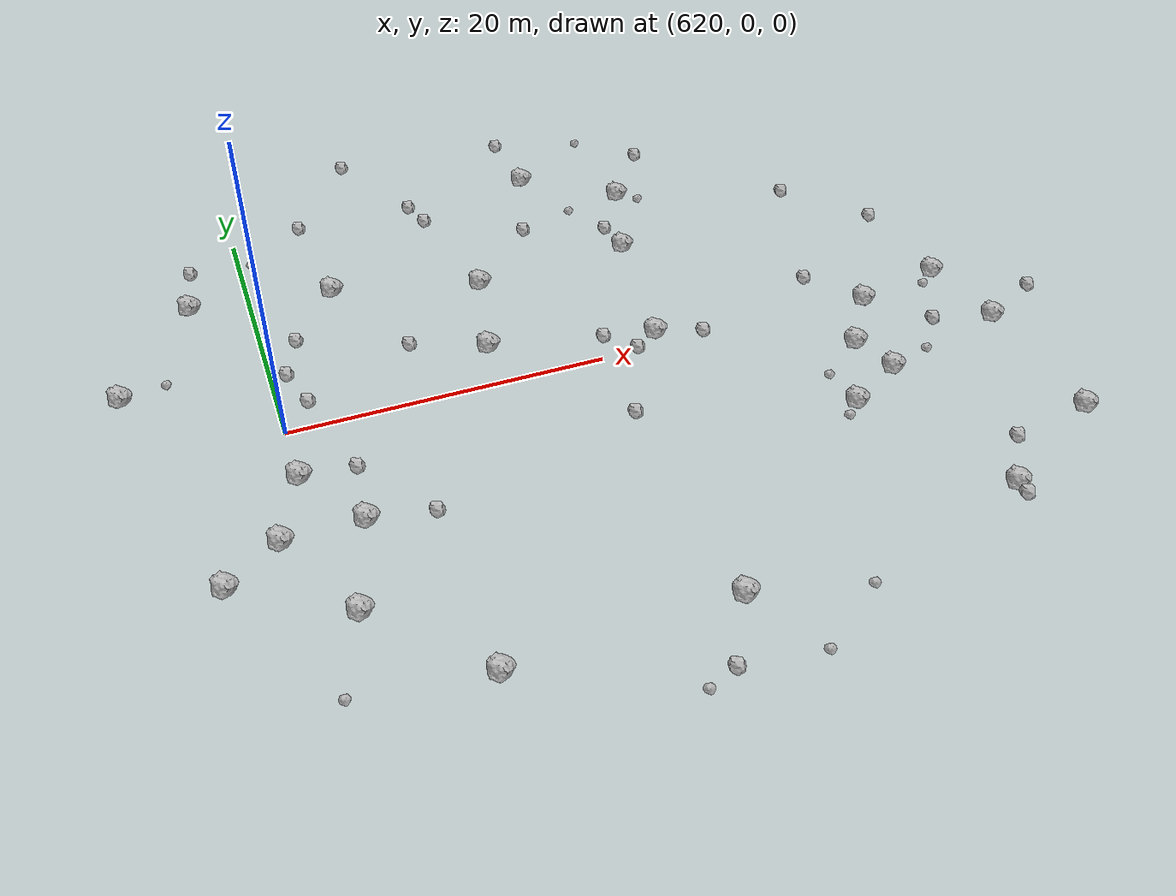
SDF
<sdf version="1.6">
 <world name="default">
  <include><uri>model://sun</uri></include>
  <model name="rock1_16_3">
   <include><uri>model://rock1</uri><pose>655.7043956893044 -4.120770054104209 0.5 0 0 0</pose></include>
  </model>
  <model name="rock1_16_4">
   <include><uri>model://rock1</uri><pose>644.0957441533825 1.175388761452286 0.5 0 0 0</pose></include>
  </model>
  <model name="rock1_16_5">
   <include><uri>model://rock1</uri><pose>665.9452701889929 -14.246281436693234 0.5 0 0 0</pose></include>
  </model>
  <model name="rock1_16_6">
   <include><uri>model://rock1</uri><pose>622.9789239991883 -8.70134914861702 0.5 0 0 0</pose></include>
  </model>
  <model name="rock1_16_7">
   <include><uri>model://rock1</uri><pose>633.5999005435331 3.464019847637047 0.5 0 0 0</pose></include>
  </model>
  <model name="rock1_16_8">
   <include><uri>model://rock1</uri><pose>621.2108016369624 -15.032592927207329 0.5 0 0 0</pose></include>
  </model>
  <model name="rock1_16_9">
   <include><uri>model://rock1</uri><pose>645.4134387568978 10.747280288065554 0.5 0 0 0</pose></include>
  </model>
  <model name="rock1_16_10">
   <include><uri>model://rock1</uri><pose>658.2930943923695 -0.3123761139691936 0.5 0 0 0</pose></include>
  </model>
  <model name="rock1_16_11">
   <include><uri>model://rock1</uri><pose>653.1465837153243 -9.214892761632257 0.5 0 0 0</pose></include>
  </model>
  <model name="rock1_16_12">
   <include><uri>model://rock1</uri><pose>618.1909195657686 -8.790787690261201 0.5 0 0 0</pose></include>
  </model>
  <model name="rock1_16_13">
   <include><uri>model://rock1</uri><pose>656.7765847409971 -7.099984939624303 0.5 0 0 0</pose></include>
  </model>
  <model name="rock1_16_14">
   <include><uri>model://rock1</uri><pose>665.3530263135234 -4.6975369934797975 0.5 0 0 0</pose></include>
  </model>
  <model name="rock1_16_15">
   <include><uri>model://rock1</uri><pose>611.1128313104774 6.096148786975867 0.5 0 0 0</pose></include>
  </model>
  <model name="rock1_16_16">
   <include><uri>model://rock1</uri><pose>614.8278249505858 -11.136126855862905 0.5 0 0 0</pose></include>
  </model>
  <model name="rock1_16_17">
   <include><uri>model://rock1</uri><pose>616.2697249253443 13.764997892469296 0.5 0 0 0</pose></include>
  </model>
  <model name="rock1_16_18">
   <include><uri>model://rock1</uri><pose>658.4979694083089 -18.523543393245667 0.5 0 0 0</pose></include>
  </model>
  <model name="rock1_16_19">
   <include><uri>model://rock1</uri><pose>626.9496047362161 -21.225142504240594 0.5 0 0 0</pose></include>
  </model>
  <model name="rock1_16_20">
   <include><uri>model://rock1</uri><pose>647.2672819390289 16.89147487906392 0.5 0 0 0</pose></include>
  </model>
  <model name="rock1_16_21">
   <include><uri>model://rock1</uri><pose>625.4412993321089 12.56161522874389 0.5 0 0 0</pose></include>
  </model>
  <model name="rock1_16_22">
   <include><uri>model://rock1</uri><pose>640.5017783429344 -20.769339314209653 0.5 0 0 0</pose></include>
  </model>
  <model name="rock1_16_23">
   <include><uri>model://rock1</uri><pose>634.9444601720307 10.005313985209014 0.5 0 0 0</pose></include>
  </model>
  <model name="rock1_16_24">
   <include><uri>model://rock1</uri><pose>641.297520013391 21.022966598976353 0.5 0 0 0</pose></include>
  </model>
  <model name="rock1_16_25">
   <include><uri>model://rock1</uri><pose>620.0858708789065 -4.117884210040511 0.5 0 0 0</pose></include>
  </model>
  <model name="rock1_16_26">
   <include><uri>model://rock1</uri><pose>664.0763939885304 0.903188113872627 0.5 0 0 0</pose></include>
  </model>
  <model name="rock2_16_0">
   <include><uri>model://rock2</uri><pose>632.5770546269393 20.451169852301533 0.3 0 0 0</pose></include>
  </model>
  <model name="rock2_16_1">
   <include><uri>model://rock2</uri><pose>658.503265843851 -19.412938723094683 0.3 0 0 0</pose></include>
  </model>
  <model name="rock2_16_2">
   <include><uri>model://rock2</uri><pose>640.7658906795572 1.9396229069829616 0.3 0 0 0</pose></include>
  </model>
  <model name="rock2_16_3">
   <include><uri>model://rock2</uri><pose>655.5552196943125 3.197810444283263 0.3 0 0 0</pose></include>
  </model>
  <model name="rock2_16_4">
   <include><uri>model://rock2</uri><pose>660.5696577279571 -15.147591828755473 0.3 0 0 0</pose></include>
  </model>
  <model name="rock2_16_5">
   <include><uri>model://rock2</uri><pose>621.7829450418573 2.20091785636869 0.3 0 0 0</pose></include>
  </model>
  <model name="rock2_16_6">
   <include><uri>model://rock2</uri><pose>650.3686584195937 21.531549596438786 0.3 0 0 0</pose></include>
  </model>
  <model name="rock2_16_7">
   <include><uri>model://rock2</uri><pose>663.20295943644 8.308438219931965 0.3 0 0 0</pose></include>
  </model>
  <model name="rock2_16_8">
   <include><uri>model://rock2</uri><pose>628.8939214873941 5.3958530997735465 0.3 0 0 0</pose></include>
  </model>
  <model name="rock2_16_9">
   <include><uri>model://rock2</uri><pose>658.6574350652293 13.304996682955306 0.3 0 0 0</pose></include>
  </model>
  <model name="rock2_16_10">
   <include><uri>model://rock2</uri><pose>647.0020224953712 0.3292113565565806 0.3 0 0 0</pose></include>
  </model>
  <model name="rock2_16_11">
   <include><uri>model://rock2</uri><pose>644.9558667293043 13.25344334705148 0.3 0 0 0</pose></include>
  </model>
  <model name="rock2_16_12">
   <include><uri>model://rock2</uri><pose>626.8135766906926 -9.318151224325433 0.3 0 0 0</pose></include>
  </model>
  <model name="rock2_16_13">
   <include><uri>model://rock2</uri><pose>638.1037180438856 -24.913896442127772 0.3 0 0 0</pose></include>
  </model>
  <model name="rock2_16_14">
   <include><uri>model://rock2</uri><pose>661.5289089266128 -3.5869502978547203 0.3 0 0 0</pose></include>
  </model>
  <model name="rock2_16_15">
   <include><uri>model://rock2</uri><pose>622.176720569034 8.169166240450295 0.3 0 0 0</pose></include>
  </model>
  <model name="rock2_16_16">
   <include><uri>model://rock2</uri><pose>629.1664940357458 27.225401447111203 0.3 0 0 0</pose></include>
  </model>
  <model name="rock2_16_17">
   <include><uri>model://rock2</uri><pose>669.2863737662691 -2.6018501238142164 0.3 0 0 0</pose></include>
  </model>
  <model name="rock2_16_18">
   <include><uri>model://rock2</uri><pose>639.5077413104954 14.99673222618783 0.3 0 0 0</pose></include>
  </model>
  <model name="rock2_16_19">
   <include><uri>model://rock2</uri><pose>640.1326923564926 -5.486619674251585 0.3 0 0 0</pose></include>
  </model>
  <model name="rock2_16_20">
   <include><uri>model://rock2</uri><pose>623.366265425407 -4.381619563526968 0.3 0 0 0</pose></include>
  </model>
  <model name="rock2_16_21">
   <include><uri>model://rock2</uri><pose>621.0118776430653 5.08368780669479 0.3 0 0 0</pose></include>
  </model>
  <model name="rock2_16_22">
   <include><uri>model://rock2</uri><pose>640.8204834054623 26.259291075822347 0.3 0 0 0</pose></include>
  </model>
  <model name="rock2_16_23">
   <include><uri>model://rock2</uri><pose>642.4456624874972 0.18380362802174943 0.3 0 0 0</pose></include>
  </model>
  <model name="rock2_16_24">
   <include><uri>model://rock2</uri><pose>633.2259895107863 18.422931842948074 0.3 0 0 0</pose></include>
  </model>
  <model name="rock2_16_25">
   <include><uri>model://rock2</uri><pose>616.7921197851891 17.661291649671703 0.3 0 0 0</pose></include>
  </model>
  <model name="rock2_16_26">
   <include><uri>model://rock2</uri><pose>624.6783481418437 20.492503745751527 0.3 0 0 0</pose></include>
  </model>
  <model name="rock3_16_0">
   <include><uri>model://rock3</uri><pose>659.6469611237138 -6.150269729077163 0.2 0 0 0</pose></include>
  </model>
  <model name="rock3_16_1">
   <include><uri>model://rock3</uri><pose>652.1351721453977 -10.148104729715822 0.2 0 0 0</pose></include>
  </model>
  <model name="rock3_16_2">
   <include><uri>model://rock3</uri><pose>643.2957977699742 16.15299795163189 0.2 0 0 0</pose></include>
  </model>
  <model name="rock3_16_3">
   <include><uri>model://rock3</uri><pose>662.8592000881348 -0.06776254097449552 0.2 0 0 0</pose></include>
  </model>
  <model name="rock3_16_4">
   <include><uri>model://rock3</uri><pose>619.2307279705924 -20.25864774479087 0.2 0 0 0</pose></include>
  </model>
  <model name="rock3_16_5">
   <include><uri>model://rock3</uri><pose>646.6813153592825 24.653383250870824 0.2 0 0 0</pose></include>
  </model>
  <model name="rock3_16_6">
   <include><uri>model://rock3</uri><pose>647.2218366217422 -22.423400691869666 0.2 0 0 0</pose></include>
  </model>
  <model name="rock3_16_7">
   <include><uri>model://rock3</uri><pose>613.8804365492888 6.625536110828094 0.2 0 0 0</pose></include>
  </model>
  <model name="rock3_16_8">
   <include><uri>model://rock3</uri><pose>620.8223998321747 17.33354374015162 0.2 0 0 0</pose></include>
  </model>
  <model name="rock3_16_9">
   <include><uri>model://rock3</uri><pose>642.9880913167427 -25.56284092584648 0.2 0 0 0</pose></include>
  </model>
  <model name="rock3_16_10">
   <include><uri>model://rock3</uri><pose>622.1075839856383 8.143385268762579 0.2 0 0 0</pose></include>
  </model>
  <model name="rock3_16_11">
   <include><uri>model://rock3</uri><pose>648.48870439757 15.95244522170325 0.2 0 0 0</pose></include>
  </model>
  <model name="rock3_16_12">
   <include><uri>model://rock3</uri><pose>652.6693439394243 -6.400587277267444 0.2 0 0 0</pose></include>
  </model>
  <model name="rock3_16_13">
   <include><uri>model://rock3</uri><pose>636.267874348204 -25.736790122893957 0.2 0 0 0</pose></include>
  </model>
 </world>
</sdf>
